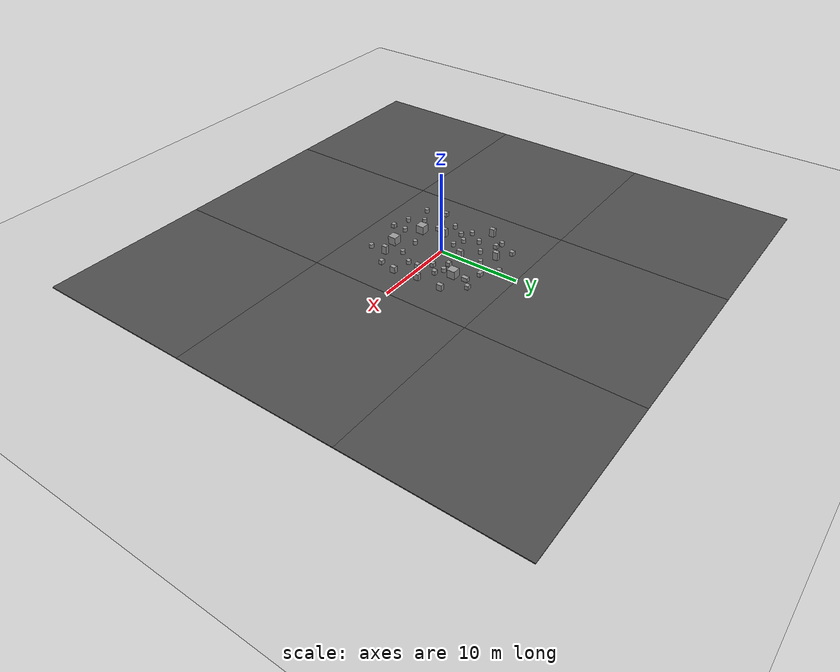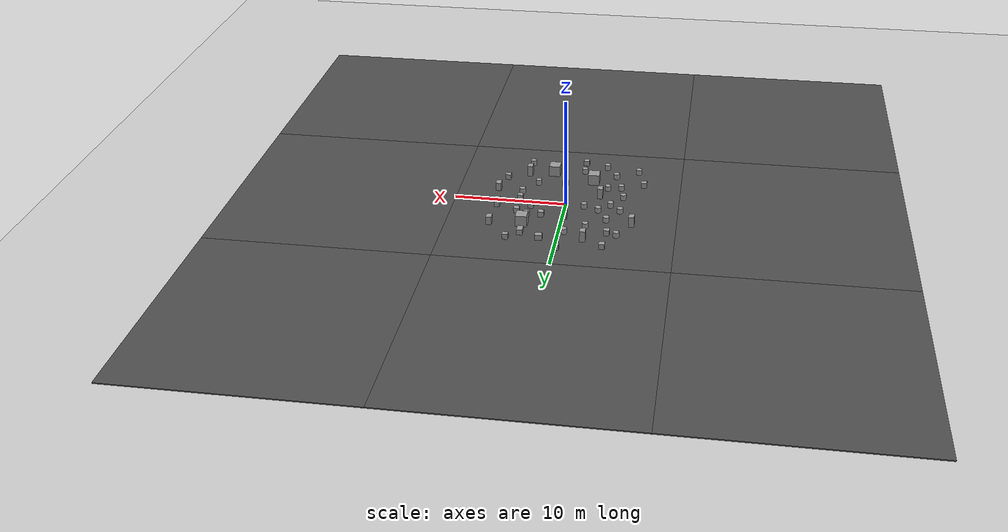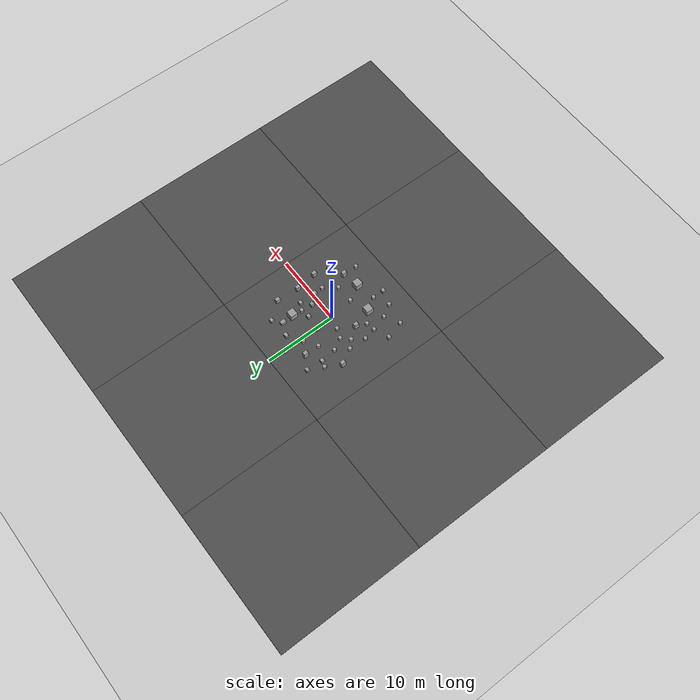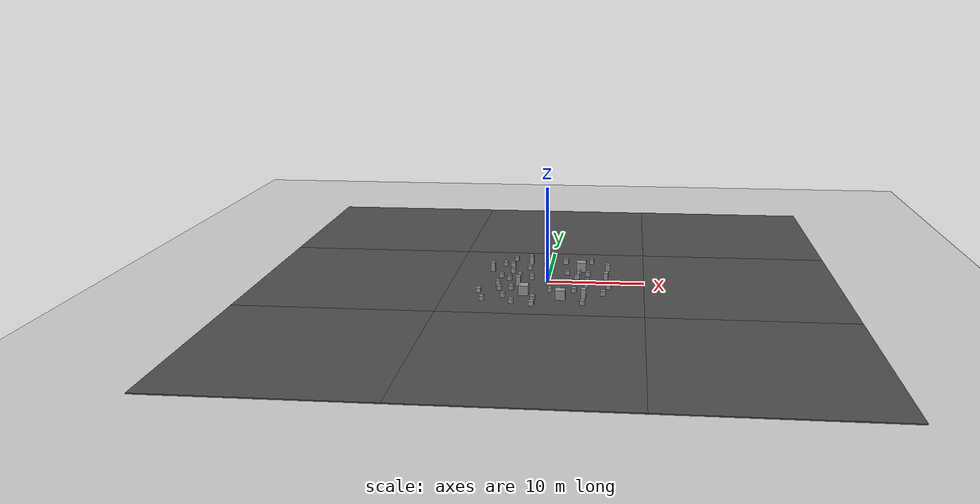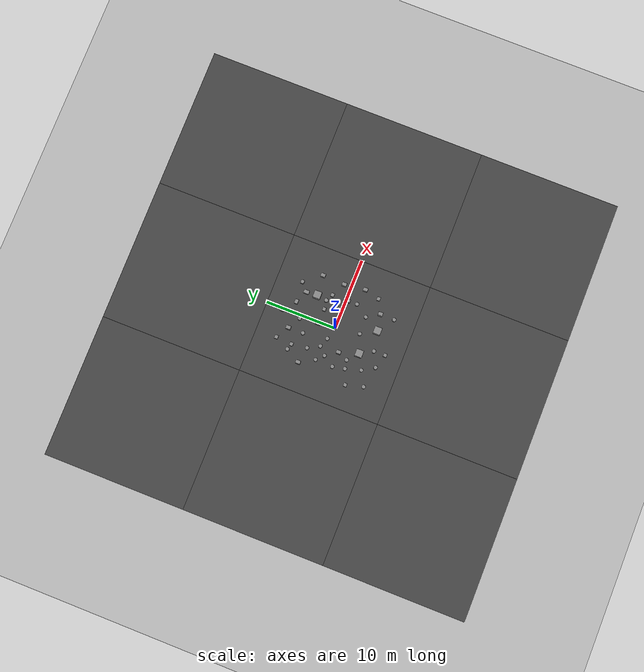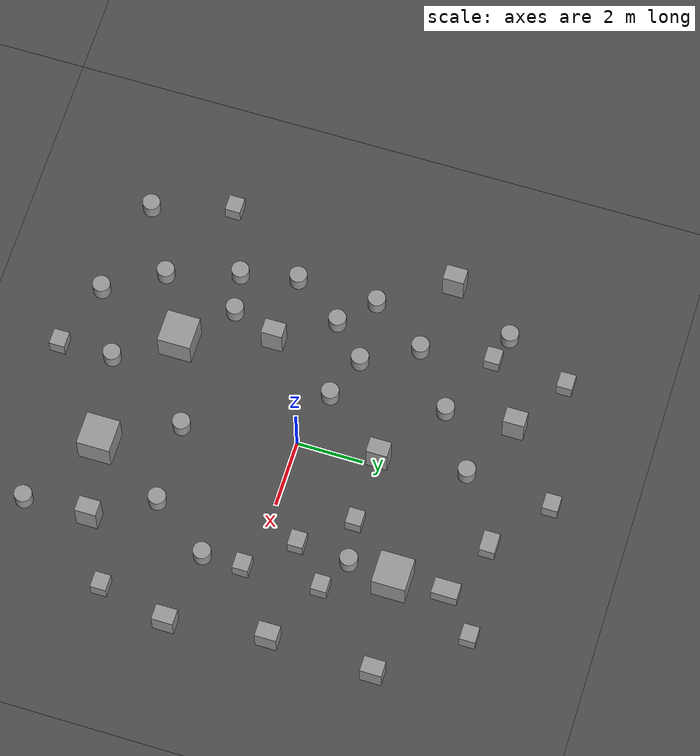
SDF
<sdf version="1.7">
 <world name="default">
  <scene><ambient>0.4 0.4 0.4 1</ambient><background>0.7 0.7 0.7 1</background><shadows>1</shadows></scene>
  <light name="sun" type="directional">
   <pose>0 0 10 0 -0 0</pose>
   <diffuse>0.8 0.8 0.8 1</diffuse>
   <specular>0.2 0.2 0.2 1</specular>
   <attenuation>
    <range>1000</range>
    <constant>0.9</constant>
    <linear>0.01</linear>
    <quadratic>0.001</quadratic>
   </attenuation>
   <direction>-0.5 0.1 -0.9</direction>
   <spot><inner_angle>0</inner_angle><outer_angle>0</outer_angle><falloff>0</falloff></spot>
  </light>
  <model name="ground_plane">
   <static>1</static>
   <link name="link">
    <collision name="collision">
     <geometry><plane><normal>0 0 1</normal><size>100 100</size></plane></geometry>
     <surface>
      <contact><collide_bitmask>65535</collide_bitmask></contact>
      <friction><ode><mu>100</mu><mu2>50</mu2></ode></friction>
     </surface>
    </collision>
    <visual name="visual">
     <cast_shadows>0</cast_shadows>
     <geometry><plane><normal>0 0 1</normal><size>100 100</size></plane></geometry>
     <material>
      <script><uri>file://media/materials/scripts/gazebo.material</uri><name>Gazebo/Grey</name></script>
     </material>
    </visual>
   </link>
  </model>
  <physics type="ode">
   <real_time_update_rate>3000</real_time_update_rate>
   <max_step_size>0.001</max_step_size>
   <real_time_factor>10</real_time_factor>
   <ode>
    <solver>
     <type>quick</type>
     <iters>100</iters>
     <precon_iters>0</precon_iters>
     <sor>1.4</sor>
     <use_dynamic_moi_rescaling>1</use_dynamic_moi_rescaling>
    </solver>
    <constraints>
     <cfm>1e-05</cfm>
     <erp>0.2</erp>
     <contact_max_correcting_vel>2000</contact_max_correcting_vel>
     <contact_surface_layer>0.01</contact_surface_layer>
    </constraints>
   </ode>
  </physics>
  <gravity>0 0 -9.8</gravity>
  <magnetic_field>6e-06 2.3e-05 -4.2e-05</magnetic_field>
  <atmosphere type="adiabatic"/>
  <spherical_coordinates>
   <surface_model>EARTH_WGS84</surface_model>
   <latitude_deg>0</latitude_deg>
   <longitude_deg>0</longitude_deg>
   <elevation>0</elevation>
   <heading_deg>0</heading_deg>
  </spherical_coordinates>
  <model name="asphalt_plane">
   <static>1</static>
   <link name="link">
    <collision name="collision"><geometry><box><size>20 20 0.1</size></box></geometry></collision>
    <visual name="visual">
     <cast_shadows>0</cast_shadows>
     <geometry><box><size>20 20 0.1</size></box></geometry>
     <material>
      <script>
       <uri>model://asphalt_plane/materials/scripts</uri>
       <uri>model://asphalt_plane/materials/textures</uri>
       <name>vrc/asphalt</name>
      </script>
     </material>
    </visual>
   </link>
  </model>
  <model name="asphalt_plane_clone">
   <static>1</static>
   <link name="link">
    <collision name="collision"><geometry><box><size>20 20 0.1</size></box></geometry></collision>
    <visual name="visual">
     <cast_shadows>0</cast_shadows>
     <geometry><box><size>20 20 0.1</size></box></geometry>
     <material>
      <script>
       <uri>model://asphalt_plane/materials/scripts</uri>
       <uri>model://asphalt_plane/materials/textures</uri>
       <name>vrc/asphalt</name>
      </script>
     </material>
    </visual>
   </link>
   <pose>20 0 0 0 -0 0</pose>
  </model>
  <model name="asphalt_plane_clone_0">
   <static>1</static>
   <link name="link">
    <collision name="collision"><geometry><box><size>20 20 0.1</size></box></geometry></collision>
    <visual name="visual">
     <cast_shadows>0</cast_shadows>
     <geometry><box><size>20 20 0.1</size></box></geometry>
     <material>
      <script>
       <uri>model://asphalt_plane/materials/scripts</uri>
       <uri>model://asphalt_plane/materials/textures</uri>
       <name>vrc/asphalt</name>
      </script>
     </material>
    </visual>
   </link>
   <pose>20 -20 0 0 -0 0</pose>
  </model>
  <model name="asphalt_plane_clone_1">
   <static>1</static>
   <link name="link">
    <collision name="collision"><geometry><box><size>20 20 0.1</size></box></geometry></collision>
    <visual name="visual">
     <cast_shadows>0</cast_shadows>
     <geometry><box><size>20 20 0.1</size></box></geometry>
     <material>
      <script>
       <uri>model://asphalt_plane/materials/scripts</uri>
       <uri>model://asphalt_plane/materials/textures</uri>
       <name>vrc/asphalt</name>
      </script>
     </material>
    </visual>
   </link>
   <pose>0 -20 0 0 -0 0</pose>
  </model>
  <model name="asphalt_plane_clone_2">
   <static>1</static>
   <link name="link">
    <collision name="collision"><geometry><box><size>20 20 0.1</size></box></geometry></collision>
    <visual name="visual">
     <cast_shadows>0</cast_shadows>
     <geometry><box><size>20 20 0.1</size></box></geometry>
     <material>
      <script>
       <uri>model://asphalt_plane/materials/scripts</uri>
       <uri>model://asphalt_plane/materials/textures</uri>
       <name>vrc/asphalt</name>
      </script>
     </material>
    </visual>
   </link>
   <pose>-20 -20 0 0 -0 0</pose>
  </model>
  <model name="asphalt_plane_clone_3">
   <static>1</static>
   <link name="link">
    <collision name="collision"><geometry><box><size>20 20 0.1</size></box></geometry></collision>
    <visual name="visual">
     <cast_shadows>0</cast_shadows>
     <geometry><box><size>20 20 0.1</size></box></geometry>
     <material>
      <script>
       <uri>model://asphalt_plane/materials/scripts</uri>
       <uri>model://asphalt_plane/materials/textures</uri>
       <name>vrc/asphalt</name>
      </script>
     </material>
    </visual>
   </link>
   <pose>-20 0 0 0 -0 0</pose>
  </model>
  <model name="asphalt_plane_clone_4">
   <static>1</static>
   <link name="link">
    <collision name="collision"><geometry><box><size>20 20 0.1</size></box></geometry></collision>
    <visual name="visual">
     <cast_shadows>0</cast_shadows>
     <geometry><box><size>20 20 0.1</size></box></geometry>
     <material>
      <script>
       <uri>model://asphalt_plane/materials/scripts</uri>
       <uri>model://asphalt_plane/materials/textures</uri>
       <name>vrc/asphalt</name>
      </script>
     </material>
    </visual>
   </link>
   <pose>-20 20 0 0 -0 0</pose>
  </model>
  <model name="asphalt_plane_clone_5">
   <static>1</static>
   <link name="link">
    <collision name="collision"><geometry><box><size>20 20 0.1</size></box></geometry></collision>
    <visual name="visual">
     <cast_shadows>0</cast_shadows>
     <geometry><box><size>20 20 0.1</size></box></geometry>
     <material>
      <script>
       <uri>model://asphalt_plane/materials/scripts</uri>
       <uri>model://asphalt_plane/materials/textures</uri>
       <name>vrc/asphalt</name>
      </script>
     </material>
    </visual>
   </link>
   <pose>0 20 0 0 -0 0</pose>
  </model>
  <model name="asphalt_plane_clone_6">
   <static>1</static>
   <link name="link">
    <collision name="collision"><geometry><box><size>20 20 0.1</size></box></geometry></collision>
    <visual name="visual">
     <cast_shadows>0</cast_shadows>
     <geometry><box><size>20 20 0.1</size></box></geometry>
     <material>
      <script>
       <uri>model://asphalt_plane/materials/scripts</uri>
       <uri>model://asphalt_plane/materials/textures</uri>
       <name>vrc/asphalt</name>
      </script>
     </material>
    </visual>
   </link>
   <pose>20 20 0 0 -0 0</pose>
  </model>
  <light name="user_directional_light_0" type="directional">
   <pose>0 0 1 0 -0 0</pose>
   <diffuse>0.5 0.5 0.5 1</diffuse>
   <specular>0.1 0.1 0.1 1</specular>
   <direction>0.1 0.1 -0.9</direction>
   <attenuation>
    <range>20</range>
    <constant>0.5</constant>
    <linear>0.01</linear>
    <quadratic>0.001</quadratic>
   </attenuation>
   <spot><inner_angle>0</inner_angle><outer_angle>0</outer_angle><falloff>0</falloff></spot>
  </light>
  <model name="unit_box">
   <pose>3.3249 3.9253 0.549985 2.9e-05 -0 0</pose>
   <link name="link">
    <inertial>
     <mass>1</mass>
     <inertia>
      <ixx>0.166667</ixx>
      <ixy>0</ixy>
      <ixz>0</ixz>
      <iyy>0.166667</iyy>
      <iyz>0</iyz>
      <izz>0.166667</izz>
     </inertia>
    </inertial>
    <collision name="collision"><geometry><box><size>1 1 1</size></box></geometry></collision>
    <visual name="visual">
     <geometry><box><size>1 1 1</size></box></geometry>
     <material>
      <script><name>Gazebo/Grey</name><uri>file://media/materials/scripts/gazebo.material</uri></script>
     </material>
    </visual>
   </link>
  </model>
  <model name="unit_box_0">
   <pose>4.32444 6.49188 0.301356 0 -0 1e-06</pose>
   <link name="link">
    <inertial>
     <mass>1</mass>
     <inertia>
      <ixx>0.166667</ixx>
      <ixy>0</ixy>
      <ixz>0</ixz>
      <iyy>0.166667</iyy>
      <iyz>0</iyz>
      <izz>0.166667</izz>
     </inertia>
    </inertial>
    <collision name="collision">
     <geometry><box><size>0.495294 0.467832 0.502712</size></box></geometry>
    </collision>
    <visual name="visual">
     <geometry><box><size>0.495294 0.467832 0.502712</size></box></geometry>
     <material>
      <script><name>Gazebo/Grey</name><uri>file://media/materials/scripts/gazebo.material</uri></script>
     </material>
    </visual>
   </link>
  </model>
  <model name="unit_box_0_clone">
   <pose>3.22245 5.47552 0.301344 -3.1e-05 0 1e-06</pose>
   <link name="link">
    <inertial>
     <mass>1</mass>
     <inertia>
      <ixx>0.166667</ixx>
      <ixy>0</ixy>
      <ixz>0</ixz>
      <iyy>0.166667</iyy>
      <iyz>0</iyz>
      <izz>0.166667</izz>
     </inertia>
    </inertial>
    <collision name="collision">
     <geometry><box><size>0.495294 0.766084 0.502712</size></box></geometry>
    </collision>
    <visual name="visual">
     <geometry><box><size>0.495294 0.766084 0.502712</size></box></geometry>
     <material>
      <script><name>Gazebo/Grey</name><uri>file://media/materials/scripts/gazebo.material</uri></script>
     </material>
    </visual>
   </link>
  </model>
  <model name="unit_box_0_clone_0">
   <pose>1.49943 6.26197 0.301356 2e-06 -0 1e-06</pose>
   <link name="link">
    <inertial>
     <mass>1</mass>
     <inertia>
      <ixx>0.166667</ixx>
      <ixy>0</ixy>
      <ixz>0</ixz>
      <iyy>0.166667</iyy>
      <iyz>0</iyz>
      <izz>0.166667</izz>
     </inertia>
    </inertial>
    <collision name="collision">
     <geometry><box><size>0.622689 0.467832 0.502712</size></box></geometry>
    </collision>
    <visual name="visual">
     <geometry><box><size>0.622689 0.467832 0.502712</size></box></geometry>
     <material>
      <script><name>Gazebo/Grey</name><uri>file://media/materials/scripts/gazebo.material</uri></script>
     </material>
    </visual>
   </link>
  </model>
  <model name="unit_box_0_clone_1">
   <pose>1.88701 2.35733 0.301356 0 -0 1e-06</pose>
   <link name="link">
    <inertial>
     <mass>1</mass>
     <inertia>
      <ixx>0.166667</ixx>
      <ixy>0</ixy>
      <ixz>0</ixz>
      <iyy>0.166667</iyy>
      <iyz>0</iyz>
      <izz>0.166667</izz>
     </inertia>
    </inertial>
    <collision name="collision">
     <geometry><box><size>0.495294 0.467832 0.502712</size></box></geometry>
    </collision>
    <visual name="visual">
     <geometry><box><size>0.495294 0.467832 0.502712</size></box></geometry>
     <material>
      <script><name>Gazebo/Grey</name><uri>file://media/materials/scripts/gazebo.material</uri></script>
     </material>
    </visual>
   </link>
  </model>
  <model name="unit_box_0_clone_2">
   <pose>3.02414 0.969262 0.301356 0 -0 1e-06</pose>
   <link name="link">
    <inertial>
     <mass>1</mass>
     <inertia>
      <ixx>0.166667</ixx>
      <ixy>0</ixy>
      <ixz>0</ixz>
      <iyy>0.166667</iyy>
      <iyz>0</iyz>
      <izz>0.166667</izz>
     </inertia>
    </inertial>
    <collision name="collision">
     <geometry><box><size>0.495294 0.467832 0.502712</size></box></geometry>
    </collision>
    <visual name="visual">
     <geometry><box><size>0.495294 0.467832 0.502712</size></box></geometry>
     <material>
      <script><name>Gazebo/Grey</name><uri>file://media/materials/scripts/gazebo.material</uri></script>
     </material>
    </visual>
   </link>
  </model>
  <model name="unit_box_0_clone_3">
   <pose>4.15818 -0.316674 0.301356 0 -0 1e-06</pose>
   <link name="link">
    <inertial>
     <mass>1</mass>
     <inertia>
      <ixx>0.166667</ixx>
      <ixy>0</ixy>
      <ixz>0</ixz>
      <iyy>0.166667</iyy>
      <iyz>0</iyz>
      <izz>0.166667</izz>
     </inertia>
    </inertial>
    <collision name="collision">
     <geometry><box><size>0.495294 0.467832 0.502712</size></box></geometry>
    </collision>
    <visual name="visual">
     <geometry><box><size>0.495294 0.467832 0.502712</size></box></geometry>
     <material>
      <script><name>Gazebo/Grey</name><uri>file://media/materials/scripts/gazebo.material</uri></script>
     </material>
    </visual>
   </link>
  </model>
  <model name="unit_box_0_clone_4">
   <pose>4.11232 2.00992 0.301356 0 -0 1e-06</pose>
   <link name="link">
    <inertial>
     <mass>1</mass>
     <inertia>
      <ixx>0.166667</ixx>
      <ixy>0</ixy>
      <ixz>0</ixz>
      <iyy>0.166667</iyy>
      <iyz>0</iyz>
      <izz>0.166667</izz>
     </inertia>
    </inertial>
    <collision name="collision">
     <geometry><box><size>0.495294 0.467832 0.502712</size></box></geometry>
    </collision>
    <visual name="visual">
     <geometry><box><size>0.495294 0.467832 0.502712</size></box></geometry>
     <material>
      <script><name>Gazebo/Grey</name><uri>file://media/materials/scripts/gazebo.material</uri></script>
     </material>
    </visual>
   </link>
  </model>
  <model name="unit_cylinder">
   <pose>-3.88535 2.58839 0.294835 -0 -0 -5.3e-05</pose>
   <link name="link">
    <inertial>
     <mass>1</mass>
     <inertia><ixx>0.145833</ixx><ixy>0</ixy><ixz>0</ixz><iyy>0.145833</iyy><iyz>0</iyz><izz>0.125</izz></inertia>
    </inertial>
    <collision name="collision">
     <geometry><cylinder><radius>0.264047</radius><length>0.48967</length></cylinder></geometry>
    </collision>
    <visual name="visual">
     <geometry><cylinder><radius>0.264047</radius><length>0.48967</length></cylinder></geometry>
     <material>
      <script><name>Gazebo/Grey</name><uri>file://media/materials/scripts/gazebo.material</uri></script>
     </material>
    </visual>
   </link>
  </model>
  <model name="unit_cylinder_clone">
   <pose>-4 0 0.294835 -0 -0 -5.3e-05</pose>
   <link name="link">
    <inertial>
     <mass>1</mass>
     <inertia><ixx>0.145833</ixx><ixy>0</ixy><ixz>0</ixz><iyy>0.145833</iyy><iyz>0</iyz><izz>0.125</izz></inertia>
    </inertial>
    <collision name="collision">
     <geometry><cylinder><radius>0.264047</radius><length>0.48967</length></cylinder></geometry>
    </collision>
    <visual name="visual">
     <geometry><cylinder><radius>0.264047</radius><length>0.48967</length></cylinder></geometry>
     <material>
      <script><name>Gazebo/Grey</name><uri>file://media/materials/scripts/gazebo.material</uri></script>
     </material>
    </visual>
   </link>
  </model>
  <model name="unit_cylinder_clone_0">
   <pose>-3 1 0.294835 -0 -0 -5.3e-05</pose>
   <link name="link">
    <inertial>
     <mass>1</mass>
     <inertia><ixx>0.145833</ixx><ixy>0</ixy><ixz>0</ixz><iyy>0.145833</iyy><iyz>0</iyz><izz>0.125</izz></inertia>
    </inertial>
    <collision name="collision">
     <geometry><cylinder><radius>0.264047</radius><length>0.48967</length></cylinder></geometry>
    </collision>
    <visual name="visual">
     <geometry><cylinder><radius>0.264047</radius><length>0.48967</length></cylinder></geometry>
     <material>
      <script><name>Gazebo/Grey</name><uri>file://media/materials/scripts/gazebo.material</uri></script>
     </material>
    </visual>
   </link>
  </model>
  <model name="unit_cylinder_clone_1">
   <pose>-1.69363 0.491632 0.294835 -0 -0 -5.3e-05</pose>
   <link name="link">
    <inertial>
     <mass>1</mass>
     <inertia><ixx>0.145833</ixx><ixy>0</ixy><ixz>0</ixz><iyy>0.145833</iyy><iyz>0</iyz><izz>0.125</izz></inertia>
    </inertial>
    <collision name="collision">
     <geometry><cylinder><radius>0.264047</radius><length>0.48967</length></cylinder></geometry>
    </collision>
    <visual name="visual">
     <geometry><cylinder><radius>0.264047</radius><length>0.48967</length></cylinder></geometry>
     <material>
      <script><name>Gazebo/Grey</name><uri>file://media/materials/scripts/gazebo.material</uri></script>
     </material>
    </visual>
   </link>
  </model>
  <model name="unit_cylinder_clone_2">
   <pose>-2.2048 3.85763 0.294835 -0 -0 -5.3e-05</pose>
   <link name="link">
    <inertial>
     <mass>1</mass>
     <inertia><ixx>0.145833</ixx><ixy>0</ixy><ixz>0</ixz><iyy>0.145833</iyy><iyz>0</iyz><izz>0.125</izz></inertia>
    </inertial>
    <collision name="collision">
     <geometry><cylinder><radius>0.264047</radius><length>0.48967</length></cylinder></geometry>
    </collision>
    <visual name="visual">
     <geometry><cylinder><radius>0.264047</radius><length>0.48967</length></cylinder></geometry>
     <material>
      <script><name>Gazebo/Grey</name><uri>file://media/materials/scripts/gazebo.material</uri></script>
     </material>
    </visual>
   </link>
  </model>
  <model name="unit_cylinder_clone_3">
   <pose>-0.494261 5 0.294835 -0 -0 -5.3e-05</pose>
   <link name="link">
    <inertial>
     <mass>1</mass>
     <inertia><ixx>0.145833</ixx><ixy>0</ixy><ixz>0</ixz><iyy>0.145833</iyy><iyz>0</iyz><izz>0.125</izz></inertia>
    </inertial>
    <collision name="collision">
     <geometry><cylinder><radius>0.264047</radius><length>0.48967</length></cylinder></geometry>
    </collision>
    <visual name="visual">
     <geometry><cylinder><radius>0.264047</radius><length>0.48967</length></cylinder></geometry>
     <material>
      <script><name>Gazebo/Grey</name><uri>file://media/materials/scripts/gazebo.material</uri></script>
     </material>
    </visual>
   </link>
  </model>
  <model name="unit_cylinder_clone_4">
   <pose>3.12569 2.54543 0.294835 -0 -0 -5.3e-05</pose>
   <link name="link">
    <inertial>
     <mass>1</mass>
     <inertia><ixx>0.145833</ixx><ixy>0</ixy><ixz>0</ixz><iyy>0.145833</iyy><iyz>0</iyz><izz>0.125</izz></inertia>
    </inertial>
    <collision name="collision">
     <geometry><cylinder><radius>0.264047</radius><length>0.48967</length></cylinder></geometry>
    </collision>
    <visual name="visual">
     <geometry><cylinder><radius>0.264047</radius><length>0.48967</length></cylinder></geometry>
     <material>
      <script><name>Gazebo/Grey</name><uri>file://media/materials/scripts/gazebo.material</uri></script>
     </material>
    </visual>
   </link>
  </model>
  <model name="unit_cylinder_clone_5">
   <pose>4.1551 -1.53167 0.294835 -0 -0 -5.3e-05</pose>
   <link name="link">
    <inertial>
     <mass>1</mass>
     <inertia><ixx>0.145833</ixx><ixy>0</ixy><ixz>0</ixz><iyy>0.145833</iyy><iyz>0</iyz><izz>0.125</izz></inertia>
    </inertial>
    <collision name="collision">
     <geometry><cylinder><radius>0.264047</radius><length>0.48967</length></cylinder></geometry>
    </collision>
    <visual name="visual">
     <geometry><cylinder><radius>0.264047</radius><length>0.48967</length></cylinder></geometry>
     <material>
      <script><name>Gazebo/Grey</name><uri>file://media/materials/scripts/gazebo.material</uri></script>
     </material>
    </visual>
   </link>
  </model>
  <model name="unit_cylinder_clone_6">
   <pose>2.93725 -3.29396 0.294835 -0 -0 -5.3e-05</pose>
   <link name="link">
    <inertial>
     <mass>1</mass>
     <inertia><ixx>0.145833</ixx><ixy>0</ixy><ixz>0</ixz><iyy>0.145833</iyy><iyz>0</iyz><izz>0.125</izz></inertia>
    </inertial>
    <collision name="collision">
     <geometry><cylinder><radius>0.264047</radius><length>0.48967</length></cylinder></geometry>
    </collision>
    <visual name="visual">
     <geometry><cylinder><radius>0.264047</radius><length>0.48967</length></cylinder></geometry>
     <material>
      <script><name>Gazebo/Grey</name><uri>file://media/materials/scripts/gazebo.material</uri></script>
     </material>
    </visual>
   </link>
  </model>
  <model name="unit_cylinder_clone_7">
   <pose>0.502169 -3.35697 0.294835 -0 -0 -5.3e-05</pose>
   <link name="link">
    <inertial>
     <mass>1</mass>
     <inertia><ixx>0.145833</ixx><ixy>0</ixy><ixz>0</ixz><iyy>0.145833</iyy><iyz>0</iyz><izz>0.125</izz></inertia>
    </inertial>
    <collision name="collision">
     <geometry><cylinder><radius>0.264047</radius><length>0.48967</length></cylinder></geometry>
    </collision>
    <visual name="visual">
     <geometry><cylinder><radius>0.264047</radius><length>0.48967</length></cylinder></geometry>
     <material>
      <script><name>Gazebo/Grey</name><uri>file://media/materials/scripts/gazebo.material</uri></script>
     </material>
    </visual>
   </link>
  </model>
  <model name="unit_cylinder_clone_8">
   <pose>-3.45713 -3 0.294835 -0 -0 -5.3e-05</pose>
   <link name="link">
    <inertial>
     <mass>1</mass>
     <inertia><ixx>0.145833</ixx><ixy>0</ixy><ixz>0</ixz><iyy>0.145833</iyy><iyz>0</iyz><izz>0.125</izz></inertia>
    </inertial>
    <collision name="collision">
     <geometry><cylinder><radius>0.264047</radius><length>0.48967</length></cylinder></geometry>
    </collision>
    <visual name="visual">
     <geometry><cylinder><radius>0.264047</radius><length>0.48967</length></cylinder></geometry>
     <material>
      <script><name>Gazebo/Grey</name><uri>file://media/materials/scripts/gazebo.material</uri></script>
     </material>
    </visual>
   </link>
  </model>
  <model name="unit_cylinder_clone_9">
   <pose>-1 -6 0.294835 -0 -0 -5.3e-05</pose>
   <link name="link">
    <inertial>
     <mass>1</mass>
     <inertia><ixx>0.145833</ixx><ixy>0</ixy><ixz>0</ixz><iyy>0.145833</iyy><iyz>0</iyz><izz>0.125</izz></inertia>
    </inertial>
    <collision name="collision">
     <geometry><cylinder><radius>0.264047</radius><length>0.48967</length></cylinder></geometry>
    </collision>
    <visual name="visual">
     <geometry><cylinder><radius>0.264047</radius><length>0.48967</length></cylinder></geometry>
     <material>
      <script><name>Gazebo/Grey</name><uri>file://media/materials/scripts/gazebo.material</uri></script>
     </material>
    </visual>
   </link>
  </model>
  <model name="unit_cylinder_clone_10">
   <pose>-4.01983 -5.33507 0.294835 0 -0 -0.000171</pose>
   <link name="link">
    <inertial>
     <mass>1</mass>
     <inertia><ixx>0.145833</ixx><ixy>0</ixy><ixz>0</ixz><iyy>0.145833</iyy><iyz>0</iyz><izz>0.125</izz></inertia>
    </inertial>
    <collision name="collision">
     <geometry><cylinder><radius>0.264047</radius><length>0.48967</length></cylinder></geometry>
    </collision>
    <visual name="visual">
     <geometry><cylinder><radius>0.264047</radius><length>0.48967</length></cylinder></geometry>
     <material>
      <script><name>Gazebo/Grey</name><uri>file://media/materials/scripts/gazebo.material</uri></script>
     </material>
    </visual>
   </link>
  </model>
  <model name="unit_cylinder_clone_11">
   <pose>-4.65428 -3.21418 0.294835 -0 -0 -5.3e-05</pose>
   <link name="link">
    <inertial>
     <mass>1</mass>
     <inertia><ixx>0.145833</ixx><ixy>0</ixy><ixz>0</ixz><iyy>0.145833</iyy><iyz>0</iyz><izz>0.125</izz></inertia>
    </inertial>
    <collision name="collision">
     <geometry><cylinder><radius>0.264047</radius><length>0.48967</length></cylinder></geometry>
    </collision>
    <visual name="visual">
     <geometry><cylinder><radius>0.264047</radius><length>0.48967</length></cylinder></geometry>
     <material>
      <script><name>Gazebo/Grey</name><uri>file://media/materials/scripts/gazebo.material</uri></script>
     </material>
    </visual>
   </link>
  </model>
  <model name="unit_cylinder_clone_12">
   <pose>-4.99992 -1.52057 0.294835 -0 -0 -3e-05</pose>
   <link name="link">
    <inertial>
     <mass>1</mass>
     <inertia><ixx>0.145833</ixx><ixy>0</ixy><ixz>0</ixz><iyy>0.145833</iyy><iyz>0</iyz><izz>0.125</izz></inertia>
    </inertial>
    <collision name="collision">
     <geometry><cylinder><radius>0.264047</radius><length>0.48967</length></cylinder></geometry>
    </collision>
    <visual name="visual">
     <geometry><cylinder><radius>0.264047</radius><length>0.48967</length></cylinder></geometry>
     <material>
      <script><name>Gazebo/Grey</name><uri>file://media/materials/scripts/gazebo.material</uri></script>
     </material>
    </visual>
   </link>
  </model>
  <model name="unit_cylinder_clone_13">
   <pose>-6.00039 -6.44286 0.294833 1e-06 6e-06 4.1e-05</pose>
   <link name="link">
    <inertial>
     <mass>1</mass>
     <inertia><ixx>0.145833</ixx><ixy>0</ixy><ixz>0</ixz><iyy>0.145833</iyy><iyz>0</iyz><izz>0.125</izz></inertia>
    </inertial>
    <collision name="collision">
     <geometry><cylinder><radius>0.264047</radius><length>0.48967</length></cylinder></geometry>
    </collision>
    <visual name="visual">
     <geometry><cylinder><radius>0.264047</radius><length>0.48967</length></cylinder></geometry>
     <material>
      <script><name>Gazebo/Grey</name><uri>file://media/materials/scripts/gazebo.material</uri></script>
     </material>
    </visual>
   </link>
  </model>
  <model name="unit_cylinder_clone_14">
   <pose>-5 5 0.294835 -0 -0 -5.3e-05</pose>
   <link name="link">
    <inertial>
     <mass>1</mass>
     <inertia><ixx>0.145833</ixx><ixy>0</ixy><ixz>0</ixz><iyy>0.145833</iyy><iyz>0</iyz><izz>0.125</izz></inertia>
    </inertial>
    <collision name="collision">
     <geometry><cylinder><radius>0.264047</radius><length>0.48967</length></cylinder></geometry>
    </collision>
    <visual name="visual">
     <geometry><cylinder><radius>0.264047</radius><length>0.48967</length></cylinder></geometry>
     <material>
      <script><name>Gazebo/Grey</name><uri>file://media/materials/scripts/gazebo.material</uri></script>
     </material>
    </visual>
   </link>
  </model>
  <model name="unit_cylinder_clone_15">
   <pose>4 -7 0.294835 -0 -0 -5.3e-05</pose>
   <link name="link">
    <inertial>
     <mass>1</mass>
     <inertia><ixx>0.145833</ixx><ixy>0</ixy><ixz>0</ixz><iyy>0.145833</iyy><iyz>0</iyz><izz>0.125</izz></inertia>
    </inertial>
    <collision name="collision">
     <geometry><cylinder><radius>0.264047</radius><length>0.48967</length></cylinder></geometry>
    </collision>
    <visual name="visual">
     <geometry><cylinder><radius>0.264047</radius><length>0.48967</length></cylinder></geometry>
     <material>
      <script><name>Gazebo/Grey</name><uri>file://media/materials/scripts/gazebo.material</uri></script>
     </material>
    </visual>
   </link>
  </model>
  <model name="unit_cylinder_clone_16">
   <pose>-4.94241 0.924862 0.294835 -0 -0 -5.3e-05</pose>
   <link name="link">
    <inertial>
     <mass>1</mass>
     <inertia><ixx>0.145833</ixx><ixy>0</ixy><ixz>0</ixz><iyy>0.145833</iyy><iyz>0</iyz><izz>0.125</izz></inertia>
    </inertial>
    <collision name="collision">
     <geometry><cylinder><radius>0.264047</radius><length>0.48967</length></cylinder></geometry>
    </collision>
    <visual name="visual">
     <geometry><cylinder><radius>0.264047</radius><length>0.48967</length></cylinder></geometry>
     <material>
      <script><name>Gazebo/Grey</name><uri>file://media/materials/scripts/gazebo.material</uri></script>
     </material>
    </visual>
   </link>
  </model>
  <model name="unit_cylinder_clone_17">
   <pose>-3 -7 0.294835 -0 -0 -5.3e-05</pose>
   <link name="link">
    <inertial>
     <mass>1</mass>
     <inertia><ixx>0.145833</ixx><ixy>0</ixy><ixz>0</ixz><iyy>0.145833</iyy><iyz>0</iyz><izz>0.125</izz></inertia>
    </inertial>
    <collision name="collision">
     <geometry><cylinder><radius>0.264047</radius><length>0.48967</length></cylinder></geometry>
    </collision>
    <visual name="visual">
     <geometry><cylinder><radius>0.264047</radius><length>0.48967</length></cylinder></geometry>
     <material>
      <script><name>Gazebo/Grey</name><uri>file://media/materials/scripts/gazebo.material</uri></script>
     </material>
    </visual>
   </link>
  </model>
  <model name="unit_box_0_clone_1_clone">
   <pose>-4.15621 4.74188 0.301356 0 -0 1e-06</pose>
   <link name="link">
    <inertial>
     <mass>1</mass>
     <inertia>
      <ixx>0.166667</ixx>
      <ixy>0</ixy>
      <ixz>0</ixz>
      <iyy>0.166667</iyy>
      <iyz>0</iyz>
      <izz>0.166667</izz>
     </inertia>
    </inertial>
    <collision name="collision">
     <geometry><box><size>0.495294 0.467832 0.502712</size></box></geometry>
    </collision>
    <visual name="visual">
     <geometry><box><size>0.495294 0.467832 0.502712</size></box></geometry>
     <material>
      <script><name>Gazebo/Grey</name><uri>file://media/materials/scripts/gazebo.material</uri></script>
     </material>
    </visual>
   </link>
  </model>
  <model name="unit_box_0_clone_1_clone_0">
   <pose>-4 7 0.301356 0 -0 1e-06</pose>
   <link name="link">
    <inertial>
     <mass>1</mass>
     <inertia>
      <ixx>0.166667</ixx>
      <ixy>0</ixy>
      <ixz>0</ixz>
      <iyy>0.166667</iyy>
      <iyz>0</iyz>
      <izz>0.166667</izz>
     </inertia>
    </inertial>
    <collision name="collision">
     <geometry><box><size>0.495294 0.467832 0.502712</size></box></geometry>
    </collision>
    <visual name="visual">
     <geometry><box><size>0.495294 0.467832 0.502712</size></box></geometry>
     <material>
      <script><name>Gazebo/Grey</name><uri>file://media/materials/scripts/gazebo.material</uri></script>
     </material>
    </visual>
   </link>
  </model>
  <model name="unit_box_0_clone_1_clone_1">
   <pose>-0.198532 7.63401 0.301356 0 -0 1e-06</pose>
   <link name="link">
    <inertial>
     <mass>1</mass>
     <inertia>
      <ixx>0.166667</ixx>
      <ixy>0</ixy>
      <ixz>0</ixz>
      <iyy>0.166667</iyy>
      <iyz>0</iyz>
      <izz>0.166667</izz>
     </inertia>
    </inertial>
    <collision name="collision">
     <geometry><box><size>0.495294 0.467832 0.502712</size></box></geometry>
    </collision>
    <visual name="visual">
     <geometry><box><size>0.495294 0.467832 0.502712</size></box></geometry>
     <material>
      <script><name>Gazebo/Grey</name><uri>file://media/materials/scripts/gazebo.material</uri></script>
     </material>
    </visual>
   </link>
  </model>
  <model name="unit_box_0_clone_1_clone_2">
   <pose>5.89538 -3.99875 0.301356 0 -0 1e-06</pose>
   <link name="link">
    <inertial>
     <mass>1</mass>
     <inertia>
      <ixx>0.166667</ixx>
      <ixy>0</ixy>
      <ixz>0</ixz>
      <iyy>0.166667</iyy>
      <iyz>0</iyz>
      <izz>0.166667</izz>
     </inertia>
    </inertial>
    <collision name="collision">
     <geometry><box><size>0.495294 0.467832 0.502712</size></box></geometry>
    </collision>
    <visual name="visual">
     <geometry><box><size>0.495294 0.467832 0.502712</size></box></geometry>
     <material>
      <script><name>Gazebo/Grey</name><uri>file://media/materials/scripts/gazebo.material</uri></script>
     </material>
    </visual>
   </link>
  </model>
  <model name="unit_box_0_clone_1_clone_3">
   <pose>-0.962788 -7.60684 0.301356 0 -0 1e-06</pose>
   <link name="link">
    <inertial>
     <mass>1</mass>
     <inertia>
      <ixx>0.166667</ixx>
      <ixy>0</ixy>
      <ixz>0</ixz>
      <iyy>0.166667</iyy>
      <iyz>0</iyz>
      <izz>0.166667</izz>
     </inertia>
    </inertial>
    <collision name="collision">
     <geometry><box><size>0.495294 0.467832 0.502712</size></box></geometry>
    </collision>
    <visual name="visual">
     <geometry><box><size>0.495294 0.467832 0.502712</size></box></geometry>
     <material>
      <script><name>Gazebo/Grey</name><uri>file://media/materials/scripts/gazebo.material</uri></script>
     </material>
    </visual>
   </link>
  </model>
  <model name="unit_box_0_clone_1_clone_4">
   <pose>-6.65731 -4.0283 0.301356 0 -0 1e-06</pose>
   <link name="link">
    <inertial>
     <mass>1</mass>
     <inertia>
      <ixx>0.166667</ixx>
      <ixy>0</ixy>
      <ixz>0</ixz>
      <iyy>0.166667</iyy>
      <iyz>0</iyz>
      <izz>0.166667</izz>
     </inertia>
    </inertial>
    <collision name="collision">
     <geometry><box><size>0.495294 0.467832 0.502712</size></box></geometry>
    </collision>
    <visual name="visual">
     <geometry><box><size>0.495294 0.467832 0.502712</size></box></geometry>
     <material>
      <script><name>Gazebo/Grey</name><uri>file://media/materials/scripts/gazebo.material</uri></script>
     </material>
    </visual>
   </link>
  </model>
  <model name="unit_box_1">
   <pose>1.73473 -5.4484 0.549985 2.9e-05 -0 0</pose>
   <link name="link">
    <inertial>
     <mass>1</mass>
     <inertia>
      <ixx>0.166667</ixx>
      <ixy>0</ixy>
      <ixz>0</ixz>
      <iyy>0.166667</iyy>
      <iyz>0</iyz>
      <izz>0.166667</izz>
     </inertia>
    </inertial>
    <collision name="collision"><geometry><box><size>1 1 1</size></box></geometry></collision>
    <visual name="visual">
     <geometry><box><size>1 1 1</size></box></geometry>
     <material>
      <script><name>Gazebo/Grey</name><uri>file://media/materials/scripts/gazebo.material</uri></script>
     </material>
    </visual>
   </link>
  </model>
  <model name="unit_box_2">
   <pose>-2.0426 -4.2498 0.549998 3e-06 -0 0</pose>
   <link name="link">
    <inertial>
     <mass>1</mass>
     <inertia>
      <ixx>0.166667</ixx>
      <ixy>0</ixy>
      <ixz>0</ixz>
      <iyy>0.166667</iyy>
      <iyz>0</iyz>
      <izz>0.166667</izz>
     </inertia>
    </inertial>
    <collision name="collision"><geometry><box><size>1 1 1</size></box></geometry></collision>
    <visual name="visual">
     <geometry><box><size>1 1 1</size></box></geometry>
     <material>
      <script><name>Gazebo/Grey</name><uri>file://media/materials/scripts/gazebo.material</uri></script>
     </material>
    </visual>
   </link>
  </model>
  <model name="unit_box_3">
   <pose>-0.185436 2.4314 0.55 0 -0 0</pose>
   <link name="link">
    <inertial>
     <mass>1</mass>
     <inertia>
      <ixx>0.166667</ixx>
      <ixy>0</ixy>
      <ixz>0</ixz>
      <iyy>0.166667</iyy>
      <iyz>0</iyz>
      <izz>0.166667</izz>
     </inertia>
    </inertial>
    <collision name="collision"><geometry><box><size>0.473217 0.637104 1</size></box></geometry></collision>
    <visual name="visual">
     <geometry><box><size>0.473217 0.637104 1</size></box></geometry>
     <material>
      <script><name>Gazebo/Grey</name><uri>file://media/materials/scripts/gazebo.material</uri></script>
     </material>
    </visual>
   </link>
  </model>
  <model name="unit_box_3_clone">
   <pose>-2.24652 5.9397 0.55 0 -0 0</pose>
   <link name="link">
    <inertial>
     <mass>1</mass>
     <inertia>
      <ixx>0.166667</ixx>
      <ixy>0</ixy>
      <ixz>0</ixz>
      <iyy>0.166667</iyy>
      <iyz>0</iyz>
      <izz>0.166667</izz>
     </inertia>
    </inertial>
    <collision name="collision"><geometry><box><size>0.473217 0.637104 1</size></box></geometry></collision>
    <visual name="visual">
     <geometry><box><size>0.473217 0.637104 1</size></box></geometry>
     <material>
      <script><name>Gazebo/Grey</name><uri>file://media/materials/scripts/gazebo.material</uri></script>
     </material>
    </visual>
   </link>
  </model>
  <model name="unit_box_3_clone_0">
   <pose>-2.8958 -1.60924 0.55 -0 -0 -0</pose>
   <link name="link">
    <inertial>
     <mass>1</mass>
     <inertia>
      <ixx>0.166667</ixx>
      <ixy>0</ixy>
      <ixz>0</ixz>
      <iyy>0.166667</iyy>
      <iyz>0</iyz>
      <izz>0.166667</izz>
     </inertia>
    </inertial>
    <collision name="collision"><geometry><box><size>0.473217 0.637104 1</size></box></geometry></collision>
    <visual name="visual">
     <geometry><box><size>0.473217 0.637104 1</size></box></geometry>
     <material>
      <script><name>Gazebo/Grey</name><uri>file://media/materials/scripts/gazebo.material</uri></script>
     </material>
    </visual>
   </link>
  </model>
  <model name="unit_box_3_clone_1">
   <pose>6.15547 4.18849 0.422714 -0 -0 -0</pose>
   <link name="link">
    <inertial>
     <mass>1</mass>
     <inertia>
      <ixx>0.166667</ixx>
      <ixy>0</ixy>
      <ixz>0</ixz>
      <iyy>0.166667</iyy>
      <iyz>0</iyz>
      <izz>0.166667</izz>
     </inertia>
    </inertial>
    <collision name="collision">
     <geometry><box><size>0.473217 0.637104 0.745427</size></box></geometry>
    </collision>
    <visual name="visual">
     <geometry><box><size>0.473217 0.637104 0.745427</size></box></geometry>
     <material>
      <script><name>Gazebo/Grey</name><uri>file://media/materials/scripts/gazebo.material</uri></script>
     </material>
    </visual>
   </link>
  </model>
  <model name="unit_box_3_clone_2">
   <pose>-6.12917 2.98269 0.55 0 -0 0</pose>
   <link name="link">
    <inertial>
     <mass>1</mass>
     <inertia>
      <ixx>0.166667</ixx>
      <ixy>0</ixy>
      <ixz>0</ixz>
      <iyy>0.166667</iyy>
      <iyz>0</iyz>
      <izz>0.166667</izz>
     </inertia>
    </inertial>
    <collision name="collision"><geometry><box><size>0.473217 0.637104 1</size></box></geometry></collision>
    <visual name="visual">
     <geometry><box><size>0.473217 0.637104 1</size></box></geometry>
     <material>
      <script><name>Gazebo/Grey</name><uri>file://media/materials/scripts/gazebo.material</uri></script>
     </material>
    </visual>
   </link>
  </model>
  <model name="unit_box_3_clone_3">
   <pose>4 -5 0.55 0 -0 0</pose>
   <link name="link">
    <inertial>
     <mass>1</mass>
     <inertia>
      <ixx>0.166667</ixx>
      <ixy>0</ixy>
      <ixz>0</ixz>
      <iyy>0.166667</iyy>
      <iyz>0</iyz>
      <izz>0.166667</izz>
     </inertia>
    </inertial>
    <collision name="collision"><geometry><box><size>0.473217 0.637104 1</size></box></geometry></collision>
    <visual name="visual">
     <geometry><box><size>0.473217 0.637104 1</size></box></geometry>
     <material>
      <script><name>Gazebo/Grey</name><uri>file://media/materials/scripts/gazebo.material</uri></script>
     </material>
    </visual>
   </link>
  </model>
  <model name="unit_box_3_clone_4">
   <pose>6.40553 -1.89878 0.427812 0 -0 0</pose>
   <link name="link">
    <inertial>
     <mass>1</mass>
     <inertia>
      <ixx>0.166667</ixx>
      <ixy>0</ixy>
      <ixz>0</ixz>
      <iyy>0.166667</iyy>
      <iyz>0</iyz>
      <izz>0.166667</izz>
     </inertia>
    </inertial>
    <collision name="collision">
     <geometry><box><size>0.473217 0.637104 0.755624</size></box></geometry>
    </collision>
    <visual name="visual">
     <geometry><box><size>0.473217 0.637104 0.755624</size></box></geometry>
     <material>
      <script><name>Gazebo/Grey</name><uri>file://media/materials/scripts/gazebo.material</uri></script>
     </material>
    </visual>
   </link>
  </model>
  <model name="unit_box_3_clone_5">
   <pose>6.02964 1.04247 0.43567 -0 -0 -0</pose>
   <link name="link">
    <inertial>
     <mass>1</mass>
     <inertia>
      <ixx>0.166667</ixx>
      <ixy>0</ixy>
      <ixz>0</ixz>
      <iyy>0.166667</iyy>
      <iyz>0</iyz>
      <izz>0.166667</izz>
     </inertia>
    </inertial>
    <collision name="collision"><geometry><box><size>0.473217 0.637104 0.77134</size></box></geometry></collision>
    <visual name="visual">
     <geometry><box><size>0.473217 0.637104 0.77134</size></box></geometry>
     <material>
      <script><name>Gazebo/Grey</name><uri>file://media/materials/scripts/gazebo.material</uri></script>
     </material>
    </visual>
   </link>
  </model>
 </world>
</sdf>
